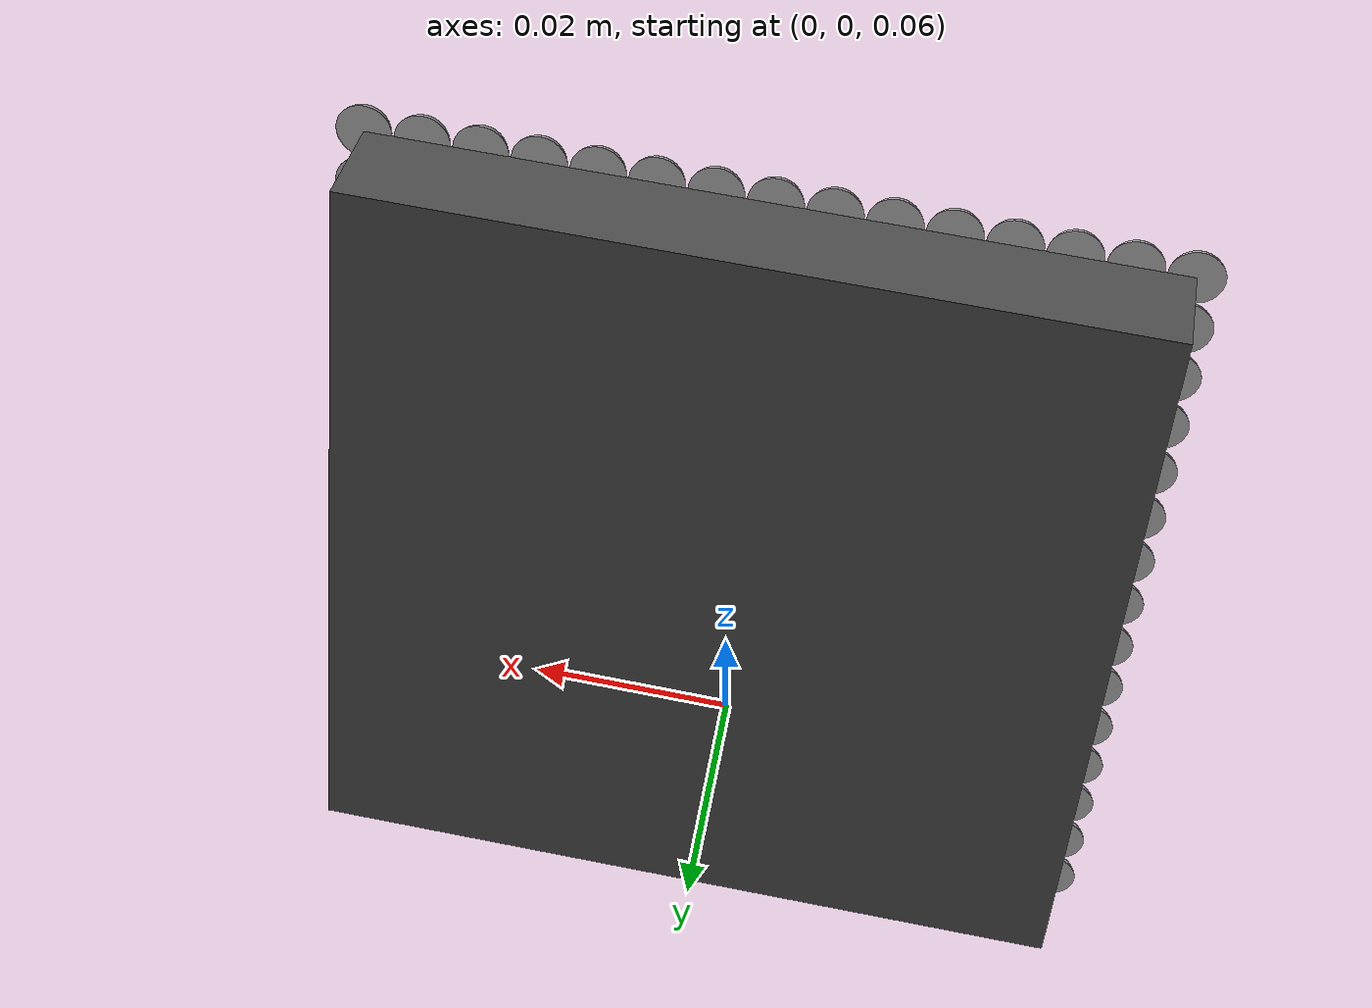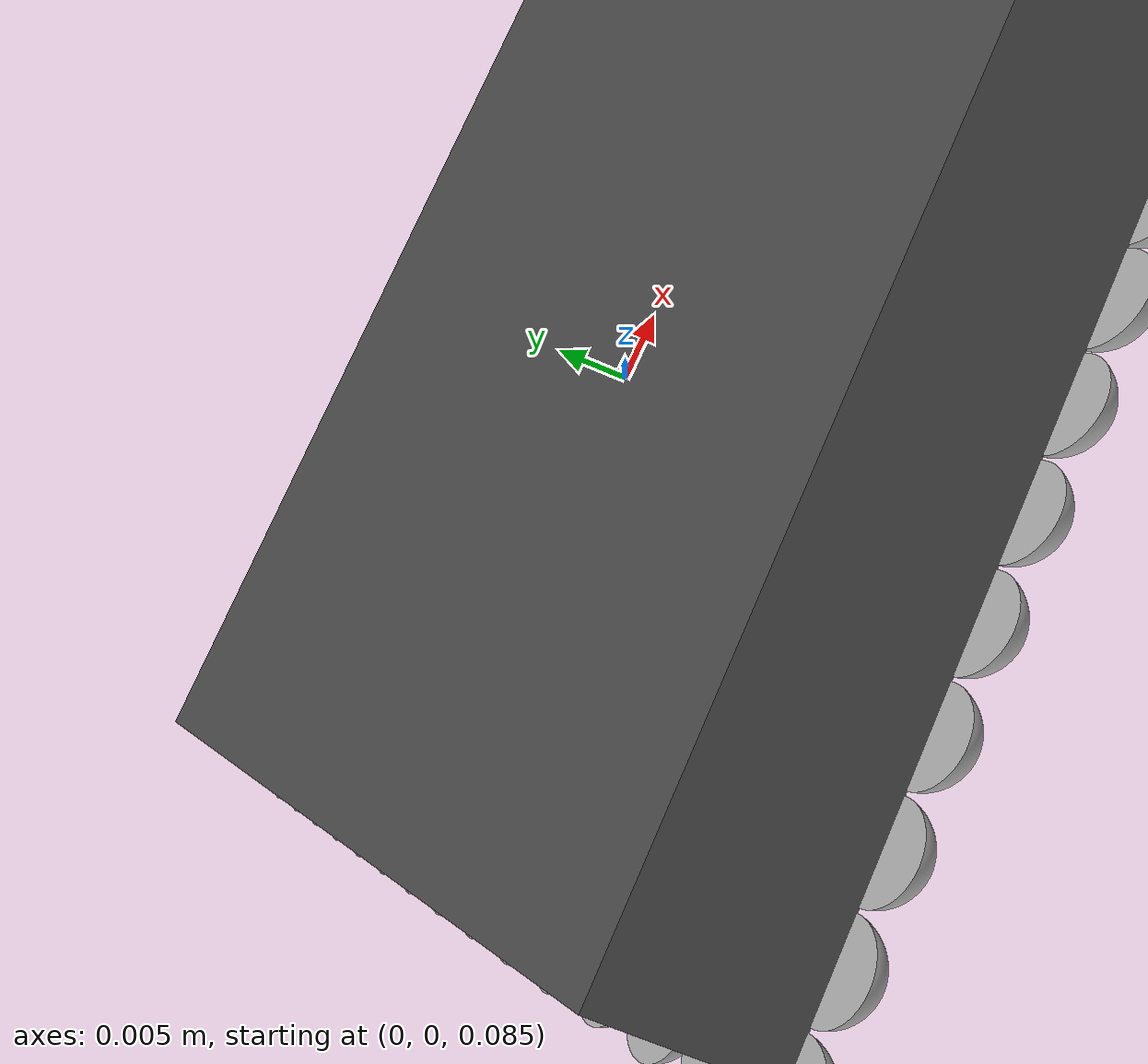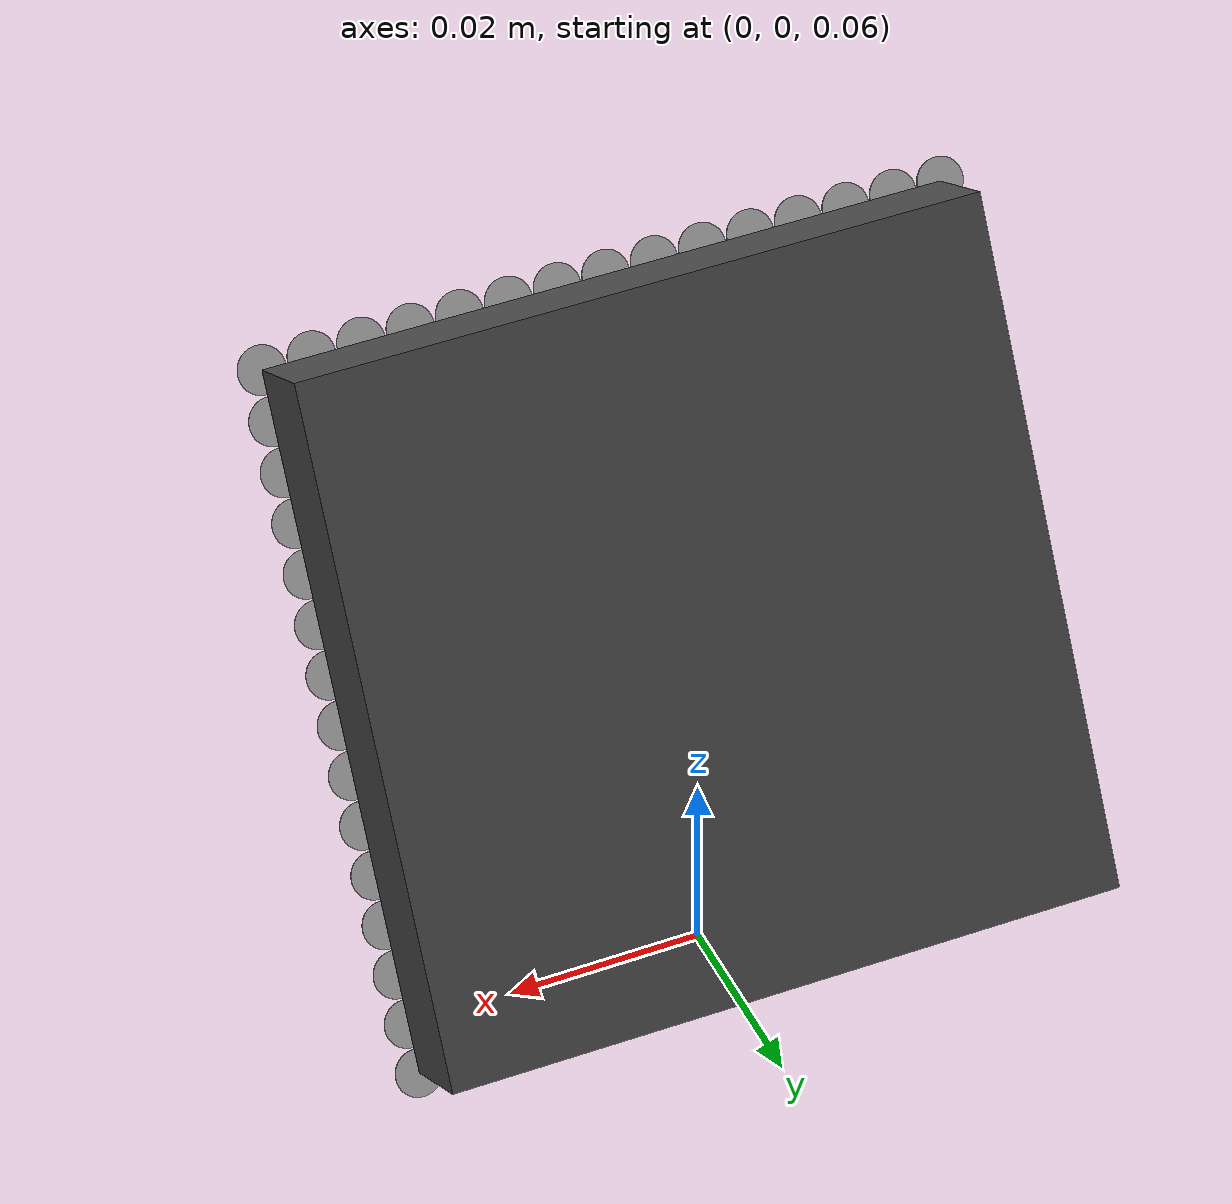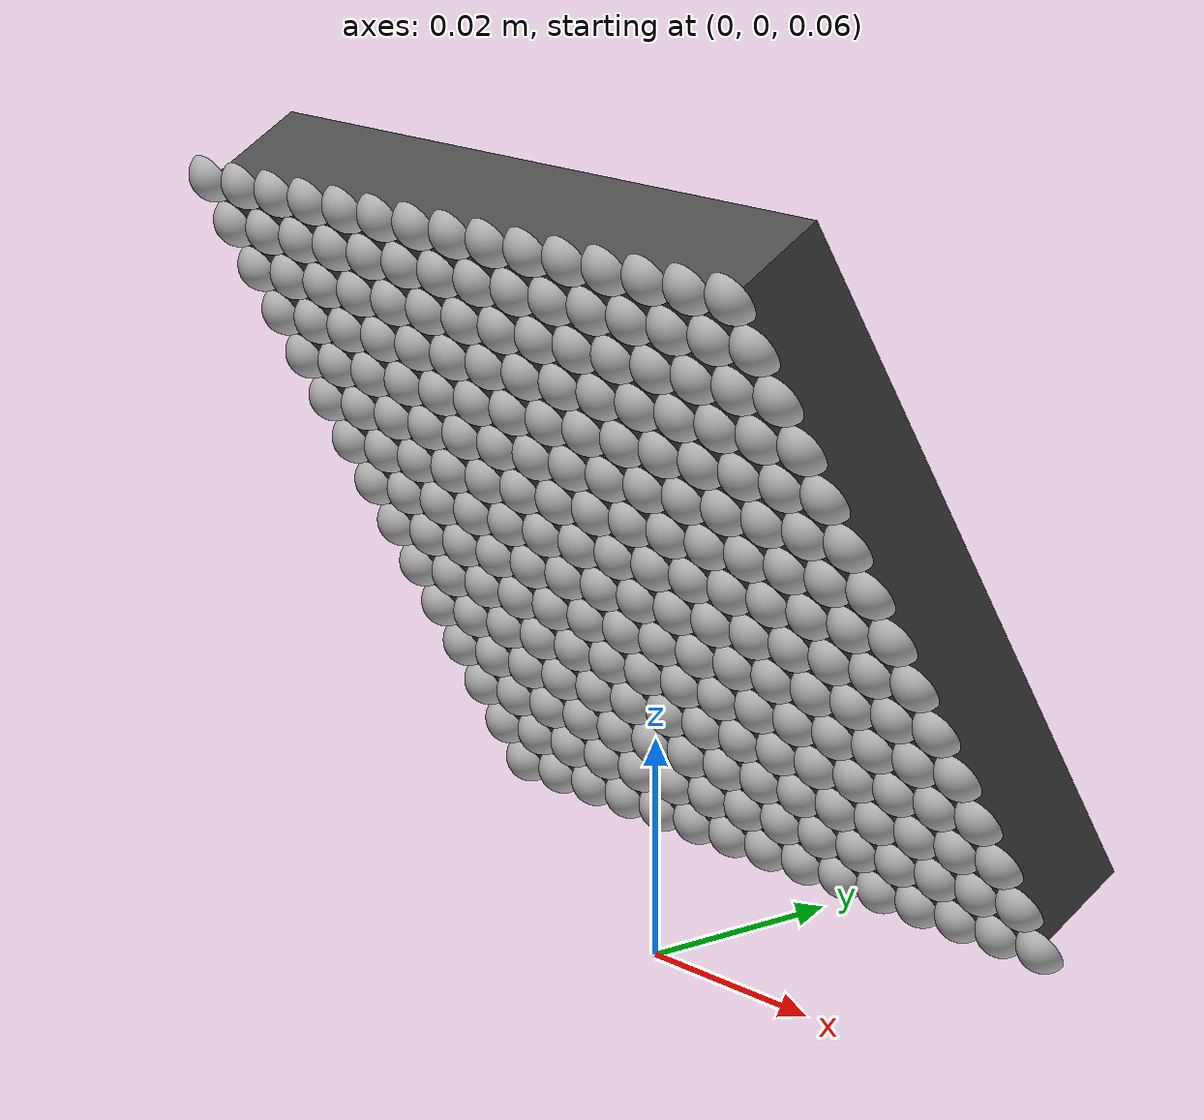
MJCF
<?xml version="1.0" encoding="utf-8"?>
<mujoco>
    <compiler angle="radian" coordinate="local" meshdir="../stls/hand" texturedir="../textures"></compiler>
    <option timestep="0.002" iterations="20" apirate="200">
        <flag warmstart="enable"></flag>
    </option>

    <include file="assets/shared.xml"></include>

    <asset>
        <include file="assets/shared_asset.xml"></include>
    </asset>

    <worldbody>
        <include file="assets/desk_multi3.xml"></include>

        <light directional="true" ambient="0.2 0.2 0.2" diffuse="0.8 0.8 0.8" specular="0.3 0.3 0.3" castshadow="false" pos="0 1 4" dir="0 0 -1" name="light0"></light>
    </worldbody>

    <!--ACTUATORS-->
    <actuator>

    </actuator>

</mujoco>

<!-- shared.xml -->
<mujoco>

    <size njmax="5000" nconmax="1000" nuser_jnt="1" nuser_site="1" nuser_tendon="1" nuser_sensor="1" nuser_actuator="16" nstack="600000"></size>

    <visual>
        <map fogstart="3" fogend="5" force="0.1"></map>
        <quality shadowsize="4096"></quality>
    </visual>

    <default>
        <default class="robot0:asset_class">
            <geom friction="1 0.005 0.001" condim="3" margin="0.0005" contype="1" conaffinity="1"></geom>
            <joint limited="true" damping="0.1" armature="0.001" margin="0.01" frictionloss="0.001"></joint>
            <site size="0.005" rgba="0.4 0.9 0.4 1"></site>
            <general ctrllimited="true" forcelimited="true"></general>
        </default>
        <default class="robot0:D_Touch">
            <site type="box" size="0.009 0.004 0.013" pos="0 -0.004 0.018" rgba="0.8 0.8 0.8 0.15" group="4"></site>
        </default>

        <default class="robot0:Palm">
            <geom material="robot0:MatViz" contype="0" conaffinity="0" group="1" type="mesh"></geom>
        </default>

        <default class="robot0:Finger">
            <geom material="robot0:MatViz" contype="0" conaffinity="0" group="1" type="mesh"></geom>
        </default>

        <default class="robot0:Pad">
            <geom material="robot0:MatViz_Pad" contype="0" conaffinity="0" group="1" type="mesh"></geom>
        </default>

        <default class="robot0:Tactile">
            <geom material="robot0:MatViz_Pad" contype="0" conaffinity="0" group="1" type="mesh"></geom>
        </default>

        <default class="robot0:D_Contact">
            <geom material="robot0:MatColl" contype="1" conaffinity="0" group="4" type="mesh"></geom>
        </default>

        <default class="robot0:free">
            <joint type="free" damping="0" armature="0" limited="false"></joint>
        </default>

    </default>

</mujoco>

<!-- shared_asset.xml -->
<!-- See LICENSE.md for legal notices. LICENSE.md must be kept together with this file. -->
<mujoco>
    <texture type="skybox" builtin="gradient" rgb1="0.44 0.85 0.56" rgb2="0.46 0.87 0.58" width="32" height="32"></texture>

    <texture name="robot0:texplane" type="2d" builtin="checker" rgb1="0.2 0.3 0.4" rgb2="0.1 0.15 0.2" width="512" height="512"></texture>
    <texture name="robot0:texgeom" type="cube" builtin="flat" mark="cross" width="127" height="127" rgb1="0.3 0.6 0.5" rgb2="0.3 0.6 0.5" markrgb="0 0 0" random="0.01"></texture>

    <material name="robot0:MatGnd" reflectance="0.5" texture="robot0:texplane" texrepeat="1 1" texuniform="true"></material>
    <material name="robot0:MatColl" specular="1" shininess="0.3" reflectance="0.5" rgba="0.4 0.5 0.6 1"></material>
    <material name="robot0:MatViz" specular="0.75" shininess="0.1" reflectance="0.5" rgba="0.3 0.3 0.3 1"></material>
    <material name="robot0:MatViz_Pad" specular="0.75" shininess="0.1" reflectance="0.5" rgba="0.7 0.7 0.7 1"></material>

    <material name="object1" specular="0.75" shininess="0.1" reflectance="0.5" rgba="0.7 0.7 0.7 1"></material>
    <material name="object2" specular="0.75" shininess="0.1" reflectance="0.5" rgba="0.3 0.5 0.7 1"></material>

    <material name="robot0:object" texture="robot0:texgeom" texuniform="false"></material>
    <material name="floor_mat" specular="0" shininess="0.5" reflectance="0" rgba="0.2 0.2 0.2 0"></material>

    <mesh name="palm"            file="palm.stl"></mesh>
    <mesh name="link_0.0"        file="link_0.0.stl"></mesh>
    <mesh name="link_1.0"        file="link_1.0.stl" />
    <mesh name="link_2.0"         file="link_2.0.stl" />
    <mesh name="link_middle"   scale="0.001 0.001 0.001" file="link_middle.stl"/>
    <mesh name="link_3.0"         file="link_3.0.stl" />
    <mesh name="link_3.0_tip"  scale="0.001 0.001 0.001" file="fingertip_V2_fixed4.stl"/>
    <mesh name="link_12.0"        file="link_12.0_right.stl" />
    <mesh name="link_13.0"        file="link_13.0.stl" />
    <mesh name="link_14.0"        file="link_14.0.stl" />
    <mesh name="link_15.0"        file="link_15.0.stl" />
    <mesh name="link_15.0_tip" scale="0.001 0.001 0.001"  file="fingertip_V2_fixed4.stl"/>
    <mesh name="tactile_sphere1" scale="0.001 0.001 0.001"  file="tactile_sphere.stl"/>
    <mesh name="tactile_sphere2" scale="0.002 0.002 0.002"  file="tactile_sphere.stl"/>

</mujoco>
